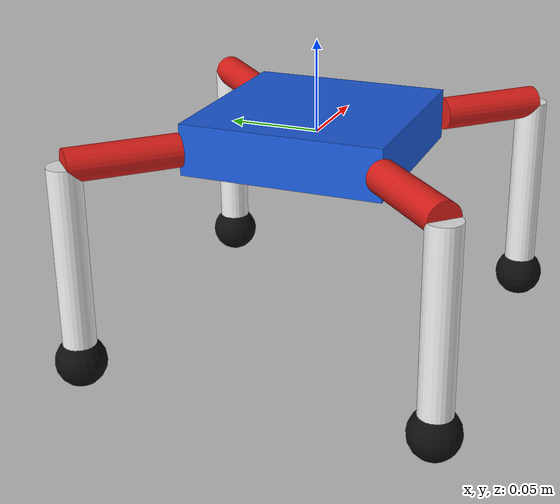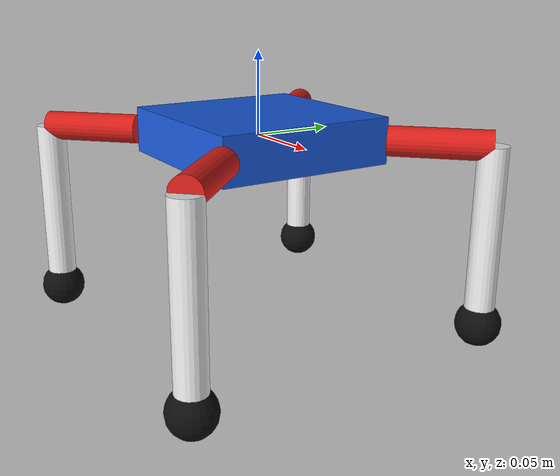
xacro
<?xml version="1.0"?>
<robot xmlns:xacro="http://www.ros.org/wiki/xacro">

  <xacro:include filename="inertial_macros.xacro"/>
  <xacro:arg name="controllers_yaml" default=""/>

  <xacro:property name="damp"      value="1.0"/>
  <xacro:property name="fric"      value="1.0"/>
  <xacro:property name="mu"        value="50.0"/>
  <xacro:property name="kp"        value="100000"/>
  <xacro:property name="kd"        value="1.0"/>
  <xacro:property name="bx"        value="0.110"/>
  <xacro:property name="by"        value="0.110"/>
  <xacro:property name="bz"        value="0.028"/>
  <xacro:property name="coxa_len"  value="0.060"/>
  <xacro:property name="coxa_r"    value="0.009"/>
  <xacro:property name="tibia_len" value="0.110"/>
  <xacro:property name="tibia_r"   value="0.009"/>
  <xacro:property name="foot_r"    value="0.014"/>

  <material name="mat_blue">  <color rgba="0.10 0.35 0.85 1.0"/> </material>
  <material name="mat_red">   <color rgba="0.85 0.12 0.10 1.0"/> </material>
  <material name="mat_white"> <color rgba="0.90 0.90 0.90 1.0"/> </material>
  <material name="mat_black"> <color rgba="0.05 0.05 0.05 1.0"/> </material>

  <!-- BASE -->
  <link name="base_link">
    <xacro:inertial_box mass="0.500" x="${bx}" y="${by}" z="${bz}">
      <origin xyz="0 0 0" rpy="0 0 0"/>
    </xacro:inertial_box>
    <visual><origin xyz="0 0 0" rpy="0 0 0"/>
      <geometry><box size="${bx} ${by} ${bz}"/></geometry>
      <material name="mat_blue"/>
    </visual>
    <collision><origin xyz="0 0 0" rpy="0 0 0"/>
      <geometry><box size="${bx} ${by} ${bz}"/></geometry>
    </collision>
  </link>
  <gazebo reference="base_link"><material>Gazebo/Blue</material>
    <mu1>${mu}</mu1><mu2>${mu}</mu2><dampingFactor>0.2</dampingFactor>
  </gazebo>

  <!-- ══════ FR LEG ══════ -->
  <joint name="fr1_joint" type="revolute">
    <parent link="base_link"/><child link="fr_coxa"/>
    <origin xyz="0.055 0.055 0" rpy="0 0 0.785"/>
    <axis xyz="0 0 1"/>
    <limit lower="-1.57" upper="1.57" effort="5" velocity="2"/>
    <dynamics damping="${damp}" friction="${fric}"/>
  </joint>
  <link name="fr_coxa">
    <xacro:inertial_cylinder mass="0.020" length="${coxa_len}" radius="${coxa_r}">
      <origin xyz="${coxa_len/2} 0 0" rpy="0 1.5708 0"/>
    </xacro:inertial_cylinder>
    <visual><origin xyz="${coxa_len/2} 0 0" rpy="0 1.5708 0"/>
      <geometry><cylinder radius="${coxa_r}" length="${coxa_len}"/></geometry>
      <material name="mat_red"/>
    </visual>
    <collision><origin xyz="${coxa_len/2} 0 0" rpy="0 1.5708 0"/>
      <geometry><cylinder radius="${coxa_r}" length="${coxa_len}"/></geometry>
    </collision>
  </link>
  <gazebo reference="fr_coxa"><material>Gazebo/Red</material><mu1>${mu}</mu1><mu2>${mu}</mu2></gazebo>

  <joint name="fr2_joint" type="revolute">
    <parent link="fr_coxa"/><child link="fr_tibia"/>
    <origin xyz="${coxa_len} 0 0" rpy="0 0 0"/>
    <axis xyz="0 1 0"/>
    <limit lower="-1.57" upper="1.57" effort="5" velocity="2"/>
    <dynamics damping="${damp}" friction="${fric}"/>
  </joint>
  <link name="fr_tibia">
    <xacro:inertial_cylinder mass="0.015" length="${tibia_len}" radius="${tibia_r}">
      <origin xyz="0 0 ${-tibia_len/2}" rpy="0 0 0"/>
    </xacro:inertial_cylinder>
    <visual><origin xyz="0 0 ${-tibia_len/2}" rpy="0 0 0"/>
      <geometry><cylinder radius="${tibia_r}" length="${tibia_len}"/></geometry>
      <material name="mat_white"/>
    </visual>
    <collision><origin xyz="0 0 ${-tibia_len/2}" rpy="0 0 0"/>
      <geometry><cylinder radius="${tibia_r}" length="${tibia_len}"/></geometry>
    </collision>
  </link>
  <gazebo reference="fr_tibia"><material>Gazebo/White</material><mu1>${mu}</mu1><mu2>${mu}</mu2></gazebo>

  <joint name="fr_foot_joint" type="fixed">
    <parent link="fr_tibia"/><child link="fr_foot"/>
    <origin xyz="0 0 ${-tibia_len}" rpy="0 0 0"/>
  </joint>
  <link name="fr_foot">
    <xacro:inertial_sphere mass="0.005" radius="${foot_r}">
      <origin xyz="0 0 0" rpy="0 0 0"/>
    </xacro:inertial_sphere>
    <visual><origin xyz="0 0 0" rpy="0 0 0"/>
      <geometry><sphere radius="${foot_r}"/></geometry><material name="mat_black"/>
    </visual>
    <collision><origin xyz="0 0 0" rpy="0 0 0"/>
      <geometry><sphere radius="${foot_r}"/></geometry>
    </collision>
  </link>
  <gazebo reference="fr_foot"><material>Gazebo/Black</material>
    <mu1>200.0</mu1><mu2>200.0</mu2><kp>${kp}</kp><kd>${kd}</kd>
    <minDepth>0.001</minDepth><maxVel>0.01</maxVel>
  </gazebo>

  <!-- ══════ FL LEG ══════ -->
  <joint name="fl1_joint" type="revolute">
    <parent link="base_link"/><child link="fl_coxa"/>
    <origin xyz="-0.055 0.055 0" rpy="0 0 2.356"/>
    <axis xyz="0 0 1"/>
    <limit lower="-1.57" upper="1.57" effort="5" velocity="2"/>
    <dynamics damping="${damp}" friction="${fric}"/>
  </joint>
  <link name="fl_coxa">
    <xacro:inertial_cylinder mass="0.020" length="${coxa_len}" radius="${coxa_r}">
      <origin xyz="${coxa_len/2} 0 0" rpy="0 1.5708 0"/>
    </xacro:inertial_cylinder>
    <visual><origin xyz="${coxa_len/2} 0 0" rpy="0 1.5708 0"/>
      <geometry><cylinder radius="${coxa_r}" length="${coxa_len}"/></geometry>
      <material name="mat_red"/>
    </visual>
    <collision><origin xyz="${coxa_len/2} 0 0" rpy="0 1.5708 0"/>
      <geometry><cylinder radius="${coxa_r}" length="${coxa_len}"/></geometry>
    </collision>
  </link>
  <gazebo reference="fl_coxa"><material>Gazebo/Red</material><mu1>${mu}</mu1><mu2>${mu}</mu2></gazebo>

  <joint name="fl2_joint" type="revolute">
    <parent link="fl_coxa"/><child link="fl_tibia"/>
    <origin xyz="${coxa_len} 0 0" rpy="0 0 0"/>
    <axis xyz="0 1 0"/>
    <limit lower="-1.57" upper="1.57" effort="5" velocity="2"/>
    <dynamics damping="${damp}" friction="${fric}"/>
  </joint>
  <link name="fl_tibia">
    <xacro:inertial_cylinder mass="0.015" length="${tibia_len}" radius="${tibia_r}">
      <origin xyz="0 0 ${-tibia_len/2}" rpy="0 0 0"/>
    </xacro:inertial_cylinder>
    <visual><origin xyz="0 0 ${-tibia_len/2}" rpy="0 0 0"/>
      <geometry><cylinder radius="${tibia_r}" length="${tibia_len}"/></geometry>
      <material name="mat_white"/>
    </visual>
    <collision><origin xyz="0 0 ${-tibia_len/2}" rpy="0 0 0"/>
      <geometry><cylinder radius="${tibia_r}" length="${tibia_len}"/></geometry>
    </collision>
  </link>
  <gazebo reference="fl_tibia"><material>Gazebo/White</material><mu1>${mu}</mu1><mu2>${mu}</mu2></gazebo>

  <joint name="fl_foot_joint" type="fixed">
    <parent link="fl_tibia"/><child link="fl_foot"/>
    <origin xyz="0 0 ${-tibia_len}" rpy="0 0 0"/>
  </joint>
  <link name="fl_foot">
    <xacro:inertial_sphere mass="0.005" radius="${foot_r}">
      <origin xyz="0 0 0" rpy="0 0 0"/>
    </xacro:inertial_sphere>
    <visual><origin xyz="0 0 0" rpy="0 0 0"/>
      <geometry><sphere radius="${foot_r}"/></geometry><material name="mat_black"/>
    </visual>
    <collision><origin xyz="0 0 0" rpy="0 0 0">
      </origin><geometry><sphere radius="${foot_r}"/></geometry>
    </collision>
  </link>
  <gazebo reference="fl_foot"><material>Gazebo/Black</material>
    <mu1>200.0</mu1><mu2>200.0</mu2><kp>${kp}</kp><kd>${kd}</kd>
    <minDepth>0.001</minDepth><maxVel>0.01</maxVel>
  </gazebo>

  <!-- ══════ RR LEG ══════ -->
  <joint name="rr1_joint" type="revolute">
    <parent link="base_link"/><child link="rr_coxa"/>
    <origin xyz="0.055 -0.055 0" rpy="0 0 -0.785"/>
    <axis xyz="0 0 1"/>
    <limit lower="-1.57" upper="1.57" effort="5" velocity="2"/>
    <dynamics damping="${damp}" friction="${fric}"/>
  </joint>
  <link name="rr_coxa">
    <xacro:inertial_cylinder mass="0.020" length="${coxa_len}" radius="${coxa_r}">
      <origin xyz="${coxa_len/2} 0 0" rpy="0 1.5708 0"/>
    </xacro:inertial_cylinder>
    <visual><origin xyz="${coxa_len/2} 0 0" rpy="0 1.5708 0"/>
      <geometry><cylinder radius="${coxa_r}" length="${coxa_len}"/></geometry>
      <material name="mat_red"/>
    </visual>
    <collision><origin xyz="${coxa_len/2} 0 0" rpy="0 1.5708 0"/>
      <geometry><cylinder radius="${coxa_r}" length="${coxa_len}"/></geometry>
    </collision>
  </link>
  <gazebo reference="rr_coxa"><material>Gazebo/Red</material><mu1>${mu}</mu1><mu2>${mu}</mu2></gazebo>

  <joint name="rr2_joint" type="revolute">
    <parent link="rr_coxa"/><child link="rr_tibia"/>
    <origin xyz="${coxa_len} 0 0" rpy="0 0 0"/>
    <axis xyz="0 1 0"/>
    <limit lower="-1.57" upper="1.57" effort="5" velocity="2"/>
    <dynamics damping="${damp}" friction="${fric}"/>
  </joint>
  <link name="rr_tibia">
    <xacro:inertial_cylinder mass="0.015" length="${tibia_len}" radius="${tibia_r}">
      <origin xyz="0 0 ${-tibia_len/2}" rpy="0 0 0"/>
    </xacro:inertial_cylinder>
    <visual><origin xyz="0 0 ${-tibia_len/2}" rpy="0 0 0"/>
      <geometry><cylinder radius="${tibia_r}" length="${tibia_len}"/></geometry>
      <material name="mat_white"/>
    </visual>
    <collision><origin xyz="0 0 ${-tibia_len/2}" rpy="0 0 0"/>
      <geometry><cylinder radius="${tibia_r}" length="${tibia_len}"/></geometry>
    </collision>
  </link>
  <gazebo reference="rr_tibia"><material>Gazebo/White</material><mu1>${mu}</mu1><mu2>${mu}</mu2></gazebo>

  <joint name="rr_foot_joint" type="fixed">
    <parent link="rr_tibia"/><child link="rr_foot"/>
    <origin xyz="0 0 ${-tibia_len}" rpy="0 0 0"/>
  </joint>
  <link name="rr_foot">
    <xacro:inertial_sphere mass="0.005" radius="${foot_r}">
      <origin xyz="0 0 0" rpy="0 0 0"/>
    </xacro:inertial_sphere>
    <visual><origin xyz="0 0 0" rpy="0 0 0"/>
      <geometry><sphere radius="${foot_r}"/></geometry><material name="mat_black"/>
    </visual>
    <collision><origin xyz="0 0 0" rpy="0 0 0">
      </origin><geometry><sphere radius="${foot_r}"/></geometry>
    </collision>
  </link>
  <gazebo reference="rr_foot"><material>Gazebo/Black</material>
    <mu1>200.0</mu1><mu2>200.0</mu2><kp>${kp}</kp><kd>${kd}</kd>
    <minDepth>0.001</minDepth><maxVel>0.01</maxVel>
  </gazebo>

  <!-- ══════ RL LEG ══════ -->
  <joint name="rl1_joint" type="revolute">
    <parent link="base_link"/><child link="rl_coxa"/>
    <origin xyz="-0.055 -0.055 0" rpy="0 0 -2.356"/>
    <axis xyz="0 0 1"/>
    <limit lower="-1.57" upper="1.57" effort="5" velocity="2"/>
    <dynamics damping="${damp}" friction="${fric}"/>
  </joint>
  <link name="rl_coxa">
    <xacro:inertial_cylinder mass="0.020" length="${coxa_len}" radius="${coxa_r}">
      <origin xyz="${coxa_len/2} 0 0" rpy="0 1.5708 0"/>
    </xacro:inertial_cylinder>
    <visual><origin xyz="${coxa_len/2} 0 0" rpy="0 1.5708 0"/>
      <geometry><cylinder radius="${coxa_r}" length="${coxa_len}"/></geometry>
      <material name="mat_red"/>
    </visual>
    <collision><origin xyz="${coxa_len/2} 0 0" rpy="0 1.5708 0"/>
      <geometry><cylinder radius="${coxa_r}" length="${coxa_len}"/></geometry>
    </collision>
  </link>
  <gazebo reference="rl_coxa"><material>Gazebo/Red</material><mu1>${mu}</mu1><mu2>${mu}</mu2></gazebo>

  <joint name="rl2_joint" type="revolute">
    <parent link="rl_coxa"/><child link="rl_tibia"/>
    <origin xyz="${coxa_len} 0 0" rpy="0 0 0"/>
    <axis xyz="0 1 0"/>
    <limit lower="-1.57" upper="1.57" effort="5" velocity="2"/>
    <dynamics damping="${damp}" friction="${fric}"/>
  </joint>
  <link name="rl_tibia">
    <xacro:inertial_cylinder mass="0.015" length="${tibia_len}" radius="${tibia_r}">
      <origin xyz="0 0 ${-tibia_len/2}" rpy="0 0 0"/>
    </xacro:inertial_cylinder>
    <visual><origin xyz="0 0 ${-tibia_len/2}" rpy="0 0 0"/>
      <geometry><cylinder radius="${tibia_r}" length="${tibia_len}"/></geometry>
      <material name="mat_white"/>
    </visual>
    <collision><origin xyz="0 0 ${-tibia_len/2}" rpy="0 0 0"/>
      <geometry><cylinder radius="${tibia_r}" length="${tibia_len}"/></geometry>
    </collision>
  </link>
  <gazebo reference="rl_tibia"><material>Gazebo/White</material><mu1>${mu}</mu1><mu2>${mu}</mu2></gazebo>

  <joint name="rl_foot_joint" type="fixed">
    <parent link="rl_tibia"/><child link="rl_foot"/>
    <origin xyz="0 0 ${-tibia_len}" rpy="0 0 0"/>
  </joint>
  <link name="rl_foot">
    <xacro:inertial_sphere mass="0.005" radius="${foot_r}">
      <origin xyz="0 0 0" rpy="0 0 0"/>
    </xacro:inertial_sphere>
    <visual><origin xyz="0 0 0" rpy="0 0 0"/>
      <geometry><sphere radius="${foot_r}"/></geometry><material name="mat_black"/>
    </visual>
    <collision><origin xyz="0 0 0" rpy="0 0 0">
      </origin><geometry><sphere radius="${foot_r}"/></geometry>
    </collision>
  </link>
  <gazebo reference="rl_foot"><material>Gazebo/Black</material>
    <mu1>200.0</mu1><mu2>200.0</mu2><kp>${kp}</kp><kd>${kd}</kd>
    <minDepth>0.001</minDepth><maxVel>0.01</maxVel>
  </gazebo>

  <!-- ══════ ROS2 CONTROL ══════ -->
  <ros2_control name="GazeboSystem" type="system">
    <hardware><plugin>gazebo_ros2_control/GazeboSystem</plugin></hardware>
    <joint name="fr1_joint">
      <command_interface name="position"><param name="min">-1.57</param><param name="max">1.57</param></command_interface>
      <state_interface name="position"><param name="initial_value">0.0</param></state_interface>
      <state_interface name="velocity"/>
    </joint>
    <joint name="fr2_joint">
      <command_interface name="position"><param name="min">-1.57</param><param name="max">1.57</param></command_interface>
      <state_interface name="position"><param name="initial_value">0.0</param></state_interface>
      <state_interface name="velocity"/>
    </joint>
    <joint name="fl1_joint">
      <command_interface name="position"><param name="min">-1.57</param><param name="max">1.57</param></command_interface>
      <state_interface name="position"><param name="initial_value">0.0</param></state_interface>
      <state_interface name="velocity"/>
    </joint>
    <joint name="fl2_joint">
      <command_interface name="position"><param name="min">-1.57</param><param name="max">1.57</param></command_interface>
      <state_interface name="position"><param name="initial_value">0.0</param></state_interface>
      <state_interface name="velocity"/>
    </joint>
    <joint name="rr1_joint">
      <command_interface name="position"><param name="min">-1.57</param><param name="max">1.57</param></command_interface>
      <state_interface name="position"><param name="initial_value">0.0</param></state_interface>
      <state_interface name="velocity"/>
    </joint>
    <joint name="rr2_joint">
      <command_interface name="position"><param name="min">-1.57</param><param name="max">1.57</param></command_interface>
      <state_interface name="position"><param name="initial_value">0.0</param></state_interface>
      <state_interface name="velocity"/>
    </joint>
    <joint name="rl1_joint">
      <command_interface name="position"><param name="min">-1.57</param><param name="max">1.57</param></command_interface>
      <state_interface name="position"><param name="initial_value">0.0</param></state_interface>
      <state_interface name="velocity"/>
    </joint>
    <joint name="rl2_joint">
      <command_interface name="position"><param name="min">-1.57</param><param name="max">1.57</param></command_interface>
      <state_interface name="position"><param name="initial_value">0.0</param></state_interface>
      <state_interface name="velocity"/>
    </joint>
  </ros2_control>

  <!-- ══════ GAZEBO PLUGIN ══════ -->
  <gazebo>
    <plugin filename="libgazebo_ros2_control.so" name="gazebo_ros2_control">
      <parameters>$(arg controllers_yaml)</parameters>
      <ros><namespace>/</namespace></ros>
    </plugin>
  </gazebo>

</robot>

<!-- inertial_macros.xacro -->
<robot xmlns:xacro="http://www.ros.org/wiki/xacro">

  <xacro:macro name="inertial_box" params="mass x y z *origin">
    <inertial>
      <xacro:insert_block name="origin"/>
      <mass value="${mass}"/>
      <inertia
        ixx="${(1/12)*mass*(y*y+z*z)}" ixy="0" ixz="0"
        iyy="${(1/12)*mass*(x*x+z*z)}" iyz="0"
        izz="${(1/12)*mass*(x*x+y*y)}"/>
    </inertial>
  </xacro:macro>

  <xacro:macro name="inertial_cylinder" params="mass length radius *origin">
    <inertial>
      <xacro:insert_block name="origin"/>
      <mass value="${mass}"/>
      <inertia
        ixx="${(1/12)*mass*(3*radius*radius+length*length)}" ixy="0" ixz="0"
        iyy="${(1/12)*mass*(3*radius*radius+length*length)}" iyz="0"
        izz="${(1/2)*mass*radius*radius}"/>
    </inertial>
  </xacro:macro>

  <xacro:macro name="inertial_sphere" params="mass radius *origin">
    <inertial>
      <xacro:insert_block name="origin"/>
      <mass value="${mass}"/>
      <inertia
        ixx="${(2/5)*mass*radius*radius}" ixy="0" ixz="0"
        iyy="${(2/5)*mass*radius*radius}" iyz="0"
        izz="${(2/5)*mass*radius*radius}"/>
    </inertial>
  </xacro:macro>

</robot>
